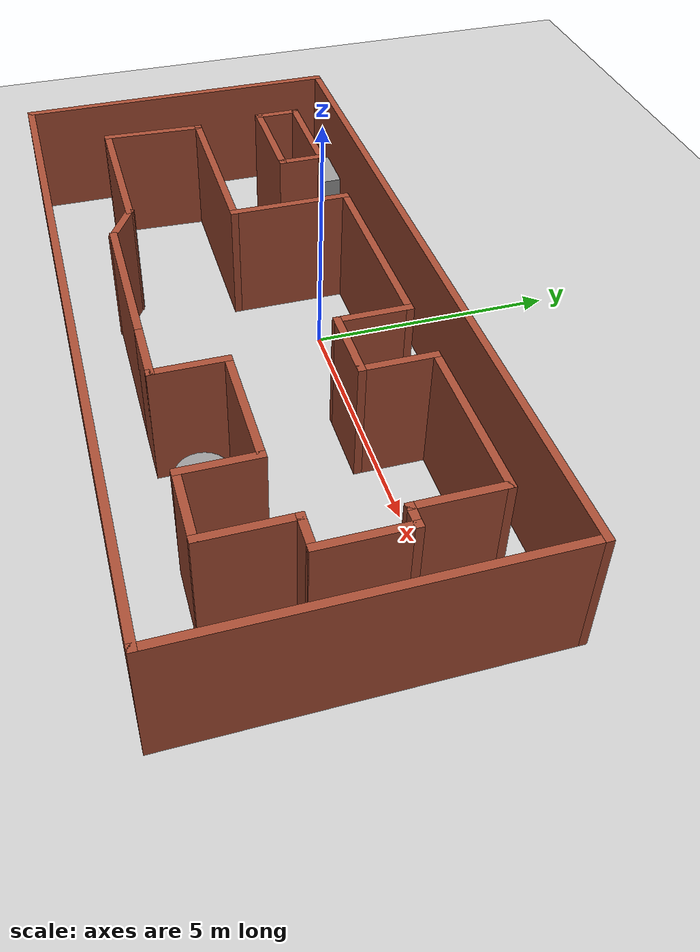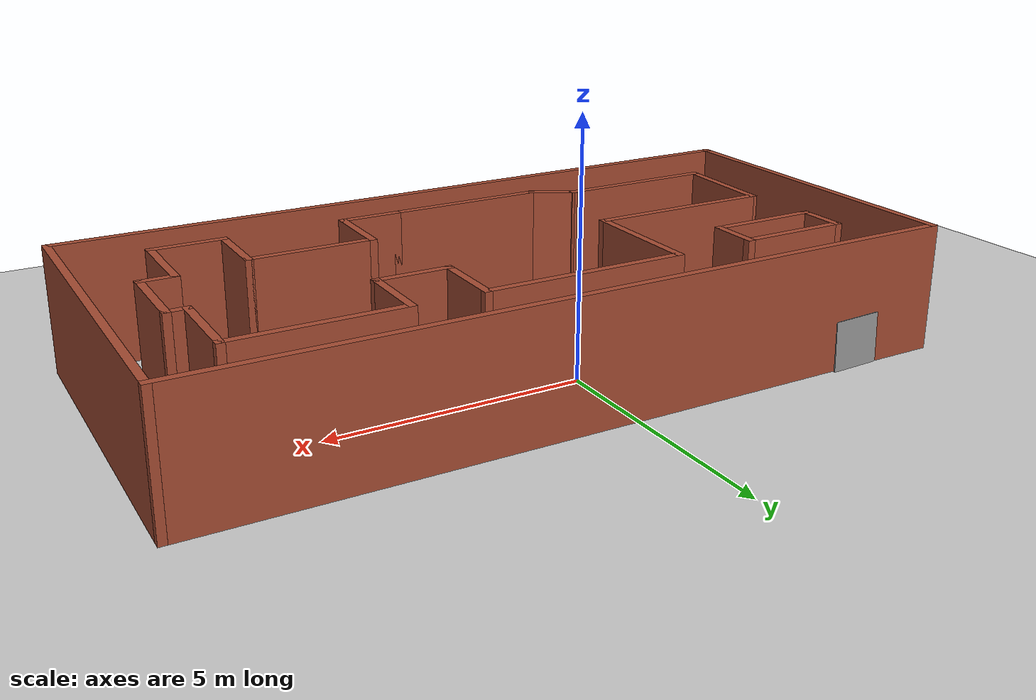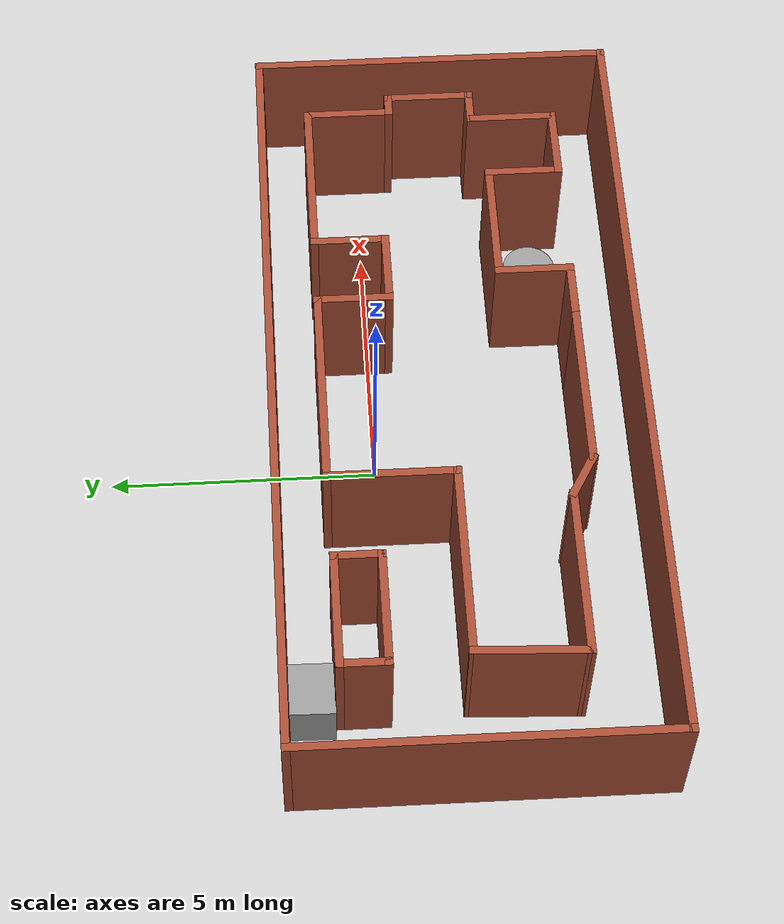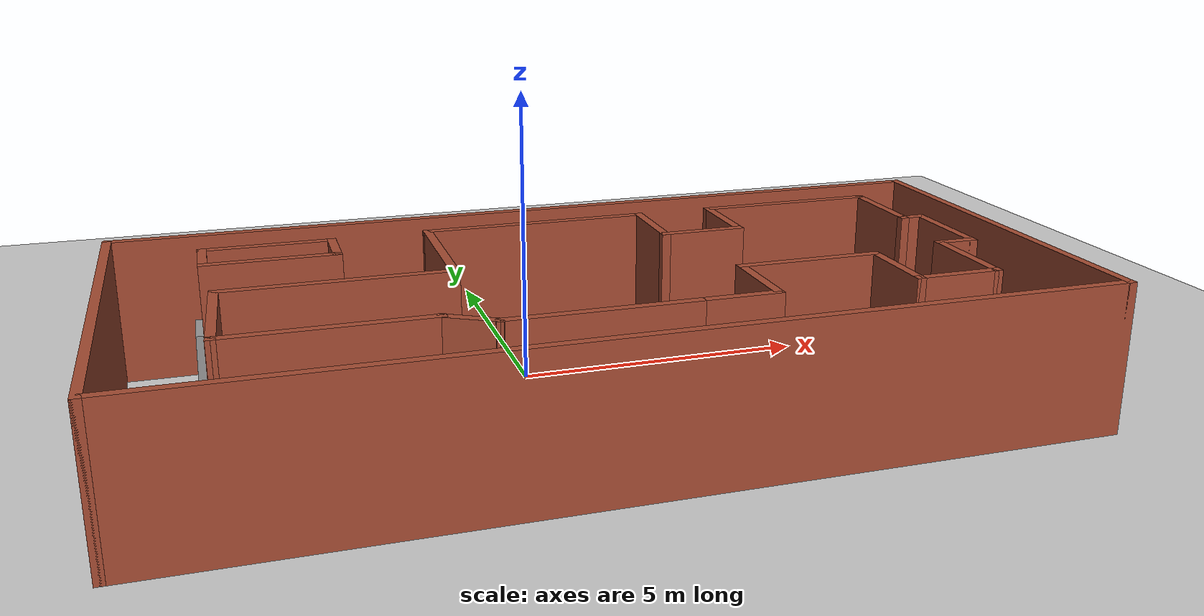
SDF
<sdf version="1.7">
 <world name="default">
  <light name="sun" type="directional">
   <pose>0 0 10 0 -0 0</pose>
   <diffuse>0.8 0.8 0.8 1</diffuse>
   <specular>0.2 0.2 0.2 1</specular>
   <attenuation>
    <range>1000</range>
    <constant>0.9</constant>
    <linear>0.01</linear>
    <quadratic>0.001</quadratic>
   </attenuation>
   <direction>-0.5 0.1 -0.9</direction>
   <spot><inner_angle>0</inner_angle><outer_angle>0</outer_angle><falloff>0</falloff></spot>
  </light>
  <model name="ground_plane">
   <static>1</static>
   <link name="link">
    <collision name="collision">
     <geometry><plane><normal>0 0 1</normal><size>100 100</size></plane></geometry>
     <surface>
      <contact><collide_bitmask>65535</collide_bitmask></contact>
      <friction><ode><mu>100</mu><mu2>50</mu2></ode></friction>
     </surface>
    </collision>
    <visual name="visual">
     <cast_shadows>0</cast_shadows>
     <geometry><plane><normal>0 0 1</normal><size>100 100</size></plane></geometry>
     <material>
      <script><uri>file://media/materials/scripts/gazebo.material</uri><name>Gazebo/Grey</name></script>
     </material>
    </visual>
   </link>
  </model>
  <gravity>0 0 -9.8</gravity>
  <magnetic_field>6e-06 2.3e-05 -4.2e-05</magnetic_field>
  <atmosphere type="adiabatic"/>
  <physics type="ode">
   <max_step_size>0.001</max_step_size>
   <real_time_factor>1</real_time_factor>
   <real_time_update_rate>1000</real_time_update_rate>
  </physics>
  <scene><ambient>0.4 0.4 0.4 1</ambient><background>0.7 0.7 0.7 1</background><shadows>1</shadows></scene>
  <spherical_coordinates>
   <surface_model>EARTH_WGS84</surface_model>
   <latitude_deg>0</latitude_deg>
   <longitude_deg>0</longitude_deg>
   <elevation>0</elevation>
   <heading_deg>0</heading_deg>
  </spherical_coordinates>
  <model name="world1-1">
   <pose>0.731843 -1.54913 0 0 -0 0</pose>
   <link name="Wall_52">
    <collision name="Wall_52_Collision">
     <geometry><box><size>7 0.15 2.5</size></box></geometry>
     <pose>0 0 1.25 0 -0 0</pose>
    </collision>
    <visual name="Wall_52_Visual">
     <pose>0 0 1.25 0 -0 0</pose>
     <geometry><box><size>7 0.15 2.5</size></box></geometry>
     <material>
      <script><uri>file://media/materials/scripts/gazebo.material</uri><name>Gazebo/Bricks</name></script>
      <ambient>1 1 1 1</ambient>
     </material>
     <meta><layer>0</layer></meta>
    </visual>
    <pose>-7.425 0 0 0 -0 -1.5708</pose>
   </link>
   <link name="Wall_53">
    <collision name="Wall_53_Collision">
     <geometry><box><size>15 0.15 2.5</size></box></geometry>
     <pose>0 0 1.25 0 -0 0</pose>
    </collision>
    <visual name="Wall_53_Visual">
     <pose>0 0 1.25 0 -0 0</pose>
     <geometry><box><size>15 0.15 2.5</size></box></geometry>
     <material>
      <script><uri>file://media/materials/scripts/gazebo.material</uri><name>Gazebo/Bricks</name></script>
      <ambient>1 1 1 1</ambient>
     </material>
     <meta><layer>0</layer></meta>
    </visual>
    <pose>-0 -3.425 0 0 -0 0</pose>
   </link>
   <link name="Wall_54">
    <collision name="Wall_54_Collision">
     <geometry><box><size>7 0.15 2.5</size></box></geometry>
     <pose>0 0 1.25 0 -0 0</pose>
    </collision>
    <visual name="Wall_54_Visual">
     <pose>0 0 1.25 0 -0 0</pose>
     <geometry><box><size>7 0.15 2.5</size></box></geometry>
     <material>
      <script><uri>file://media/materials/scripts/gazebo.material</uri><name>Gazebo/Bricks</name></script>
      <ambient>1 1 1 1</ambient>
     </material>
     <meta><layer>0</layer></meta>
    </visual>
    <pose>7.425 0 0 0 -0 1.5708</pose>
   </link>
   <link name="Wall_55">
    <collision name="Wall_55_Collision">
     <geometry><box><size>15 0.15 2.5</size></box></geometry>
     <pose>0 0 1.25 0 -0 0</pose>
    </collision>
    <visual name="Wall_55_Visual">
     <pose>0 0 1.25 0 -0 0</pose>
     <geometry><box><size>15 0.15 2.5</size></box></geometry>
     <material>
      <script><uri>file://media/materials/scripts/gazebo.material</uri><name>Gazebo/Bricks</name></script>
      <ambient>1 1 1 1</ambient>
     </material>
     <meta><layer>0</layer></meta>
    </visual>
    <pose>-0 3.425 0 0 -0 3.14159</pose>
   </link>
   <link name="Wall_57">
    <collision name="Wall_57_Collision">
     <geometry><box><size>1 0.15 2.5</size></box></geometry>
     <pose>0 0 1.25 0 -0 0</pose>
    </collision>
    <visual name="Wall_57_Visual">
     <pose>0 0 1.25 0 -0 0</pose>
     <geometry><box><size>1 0.15 2.5</size></box></geometry>
     <material>
      <script><uri>file://media/materials/scripts/gazebo.material</uri><name>Gazebo/Bricks</name></script>
      <ambient>1 1 1 1</ambient>
     </material>
     <meta><layer>0</layer></meta>
    </visual>
    <pose>-5.92151 2.02852 0 0 -0 -1.5708</pose>
   </link>
   <link name="Wall_58">
    <collision name="Wall_58_Collision">
     <geometry><box><size>2.25 0.15 2.5</size></box></geometry>
     <pose>0 0 1.25 0 -0 0</pose>
    </collision>
    <visual name="Wall_58_Visual">
     <pose>0 0 1.25 0 -0 0</pose>
     <geometry><box><size>2.25 0.15 2.5</size></box></geometry>
     <material>
      <script><uri>file://media/materials/scripts/gazebo.material</uri><name>Gazebo/Bricks</name></script>
      <ambient>1 1 1 1</ambient>
     </material>
     <meta><layer>0</layer></meta>
    </visual>
    <pose>-4.87151 1.60351 0 0 -0 0</pose>
   </link>
   <link name="Wall_59">
    <collision name="Wall_59_Collision">
     <geometry><box><size>1 0.15 2.5</size></box></geometry>
     <pose>0 0 1.25 0 -0 0</pose>
    </collision>
    <visual name="Wall_59_Visual">
     <pose>0 0 1.25 0 -0 0</pose>
     <geometry><box><size>1 0.15 2.5</size></box></geometry>
     <material>
      <script><uri>file://media/materials/scripts/gazebo.material</uri><name>Gazebo/Bricks</name></script>
      <ambient>1 1 1 1</ambient>
     </material>
     <meta><layer>0</layer></meta>
    </visual>
    <pose>-3.82151 2.02852 0 0 -0 1.5708</pose>
   </link>
   <link name="Wall_60">
    <collision name="Wall_60_Collision">
     <geometry><box><size>2.25 0.15 2.5</size></box></geometry>
     <pose>0 0 1.25 0 -0 0</pose>
    </collision>
    <visual name="Wall_60_Visual">
     <pose>0 0 1.25 0 -0 0</pose>
     <geometry><box><size>2.25 0.15 2.5</size></box></geometry>
     <material>
      <script><uri>file://media/materials/scripts/gazebo.material</uri><name>Gazebo/Bricks</name></script>
      <ambient>1 1 1 1</ambient>
     </material>
     <meta><layer>0</layer></meta>
    </visual>
    <pose>-4.87151 2.45351 0 0 -0 3.14159</pose>
   </link>
   <link name="Wall_62">
    <collision name="Wall_62_Collision">
     <geometry><box><size>3.25 0.15 2.5</size></box></geometry>
     <pose>0 0 1.25 0 -0 0</pose>
    </collision>
    <visual name="Wall_62_Visual">
     <pose>0 0 1.25 0 -0 0</pose>
     <geometry><box><size>3.25 0.15 2.5</size></box></geometry>
     <material>
      <script><uri>file://media/materials/scripts/gazebo.material</uri><name>Gazebo/Bricks</name></script>
      <ambient>1 1 1 1</ambient>
     </material>
     <meta><layer>0</layer></meta>
    </visual>
    <pose>-4.32525 -1.87191 0 0 -0 0</pose>
   </link>
   <link name="Wall_63">
    <collision name="Wall_63_Collision">
     <geometry><box><size>1 0.15 2.5</size></box></geometry>
     <pose>0 0 1.25 0 -0 0</pose>
    </collision>
    <visual name="Wall_63_Visual">
     <pose>0 0 1.25 0 -0 0</pose>
     <geometry><box><size>1 0.15 2.5</size></box></geometry>
     <material>
      <script><uri>file://media/materials/scripts/gazebo.material</uri><name>Gazebo/Bricks</name></script>
      <ambient>1 1 1 1</ambient>
     </material>
     <meta><layer>0</layer></meta>
    </visual>
    <pose>-2.40719 -2.08441 0 0 -0 -0.523599</pose>
   </link>
   <link name="Wall_64">
    <collision name="Wall_64_Collision">
     <geometry><box><size>3.25 0.15 2.5</size></box></geometry>
     <pose>0 0 1.25 0 -0 0</pose>
    </collision>
    <visual name="Wall_64_Visual">
     <pose>0 0 1.25 0 -0 0</pose>
     <geometry><box><size>3.25 0.15 2.5</size></box></geometry>
     <material>
      <script><uri>file://media/materials/scripts/gazebo.material</uri><name>Gazebo/Bricks</name></script>
      <ambient>1 1 1 1</ambient>
     </material>
     <meta><layer>0</layer></meta>
    </visual>
    <pose>-0.489128 -2.29691 0 0 -0 0</pose>
   </link>
   <link name="Wall_65">
    <collision name="Wall_65_Collision">
     <geometry><box><size>1.25 0.15 2.5</size></box></geometry>
     <pose>0 0 1.25 0 -0 0</pose>
    </collision>
    <visual name="Wall_65_Visual">
     <pose>0 0 1.25 0 -0 0</pose>
     <geometry><box><size>1.25 0.15 2.5</size></box></geometry>
     <material>
      <script><uri>file://media/materials/scripts/gazebo.material</uri><name>Gazebo/Bricks</name></script>
      <ambient>1 1 1 1</ambient>
     </material>
     <meta><layer>0</layer></meta>
    </visual>
    <pose>1.61087 -2.29691 0 0 -0 0</pose>
   </link>
   <link name="Wall_66">
    <collision name="Wall_66_Collision">
     <geometry><box><size>1.5 0.15 2.5</size></box></geometry>
     <pose>0 0 1.25 0 -0 0</pose>
    </collision>
    <visual name="Wall_66_Visual">
     <pose>0 0 1.25 0 -0 0</pose>
     <geometry><box><size>1.5 0.15 2.5</size></box></geometry>
     <material>
      <script><uri>file://media/materials/scripts/gazebo.material</uri><name>Gazebo/Bricks</name></script>
      <ambient>1 1 1 1</ambient>
     </material>
     <meta><layer>0</layer></meta>
    </visual>
    <pose>2.16087 -1.62191 0 0 -0 1.5708</pose>
   </link>
   <link name="Wall_67">
    <collision name="Wall_67_Collision">
     <geometry><box><size>2.5 0.15 2.5</size></box></geometry>
     <pose>0 0 1.25 0 -0 0</pose>
    </collision>
    <visual name="Wall_67_Visual">
     <pose>0 0 1.25 0 -0 0</pose>
     <geometry><box><size>2.5 0.15 2.5</size></box></geometry>
     <material>
      <script><uri>file://media/materials/scripts/gazebo.material</uri><name>Gazebo/Bricks</name></script>
      <ambient>1 1 1 1</ambient>
     </material>
     <meta><layer>0</layer></meta>
    </visual>
    <pose>3.33587 -0.946909 0 0 -0 0</pose>
   </link>
   <link name="Wall_68">
    <collision name="Wall_68_Collision">
     <geometry><box><size>1.5 0.15 2.5</size></box></geometry>
     <pose>0 0 1.25 0 -0 0</pose>
    </collision>
    <visual name="Wall_68_Visual">
     <pose>0 0 1.25 0 -0 0</pose>
     <geometry><box><size>1.5 0.15 2.5</size></box></geometry>
     <material>
      <script><uri>file://media/materials/scripts/gazebo.material</uri><name>Gazebo/Bricks</name></script>
      <ambient>1 1 1 1</ambient>
     </material>
     <meta><layer>0</layer></meta>
    </visual>
    <pose>4.51087 -1.62191 0 0 -0 -1.5708</pose>
   </link>
   <link name="Wall_69">
    <collision name="Wall_69_Collision">
     <geometry><box><size>1.5 0.15 2.5</size></box></geometry>
     <pose>0 0 1.25 0 -0 0</pose>
    </collision>
    <visual name="Wall_69_Visual">
     <pose>0 0 1.25 0 -0 0</pose>
     <geometry><box><size>1.5 0.15 2.5</size></box></geometry>
     <material>
      <script><uri>file://media/materials/scripts/gazebo.material</uri><name>Gazebo/Bricks</name></script>
      <ambient>1 1 1 1</ambient>
     </material>
     <meta><layer>0</layer></meta>
    </visual>
    <pose>5.18587 -2.29691 0 0 -0 0</pose>
   </link>
   <link name="Wall_70">
    <collision name="Wall_70_Collision">
     <geometry><box><size>1.75 0.15 2.5</size></box></geometry>
     <pose>0 0 1.25 0 -0 0</pose>
    </collision>
    <visual name="Wall_70_Visual">
     <pose>0 0 1.25 0 -0 0</pose>
     <geometry><box><size>1.75 0.15 2.5</size></box></geometry>
     <material>
      <script><uri>file://media/materials/scripts/gazebo.material</uri><name>Gazebo/Bricks</name></script>
      <ambient>1 1 1 1</ambient>
     </material>
     <meta><layer>0</layer></meta>
    </visual>
    <pose>5.86087 -1.49691 0 0 -0 1.5708</pose>
   </link>
   <link name="Wall_71">
    <collision name="Wall_71_Collision">
     <geometry><box><size>0.75 0.15 2.5</size></box></geometry>
     <pose>0 0 1.25 0 -0 0</pose>
    </collision>
    <visual name="Wall_71_Visual">
     <pose>0 0 1.25 0 -0 0</pose>
     <geometry><box><size>0.75 0.15 2.5</size></box></geometry>
     <material>
      <script><uri>file://media/materials/scripts/gazebo.material</uri><name>Gazebo/Bricks</name></script>
      <ambient>1 1 1 1</ambient>
     </material>
     <meta><layer>0</layer></meta>
    </visual>
    <pose>6.16087 -0.696909 0 0 -0 0</pose>
   </link>
   <link name="Wall_72">
    <collision name="Wall_72_Collision">
     <geometry><box><size>1.75 0.15 2.5</size></box></geometry>
     <pose>0 0 1.25 0 -0 0</pose>
    </collision>
    <visual name="Wall_72_Visual">
     <pose>0 0 1.25 0 -0 0</pose>
     <geometry><box><size>1.75 0.15 2.5</size></box></geometry>
     <material>
      <script><uri>file://media/materials/scripts/gazebo.material</uri><name>Gazebo/Bricks</name></script>
      <ambient>1 1 1 1</ambient>
     </material>
     <meta><layer>0</layer></meta>
    </visual>
    <pose>6.46087 0.103091 0 0 -0 1.5708</pose>
   </link>
   <link name="Wall_73">
    <collision name="Wall_73_Collision">
     <geometry><box><size>0.5 0.15 2.5</size></box></geometry>
     <pose>0 0 1.25 0 -0 0</pose>
    </collision>
    <visual name="Wall_73_Visual">
     <pose>0 0 1.25 0 -0 0</pose>
     <geometry><box><size>0.5 0.15 2.5</size></box></geometry>
     <material>
      <script><uri>file://media/materials/scripts/gazebo.material</uri><name>Gazebo/Bricks</name></script>
      <ambient>1 1 1 1</ambient>
     </material>
     <meta><layer>0</layer></meta>
    </visual>
    <pose>6.28587 0.903091 0 0 -0 3.14159</pose>
   </link>
   <link name="Wall_74">
    <collision name="Wall_74_Collision">
     <geometry><box><size>1.75 0.15 2.5</size></box></geometry>
     <pose>0 0 1.25 0 -0 0</pose>
    </collision>
    <visual name="Wall_74_Visual">
     <pose>0 0 1.25 0 -0 0</pose>
     <geometry><box><size>1.75 0.15 2.5</size></box></geometry>
     <material>
      <script><uri>file://media/materials/scripts/gazebo.material</uri><name>Gazebo/Bricks</name></script>
      <ambient>1 1 1 1</ambient>
     </material>
     <meta><layer>0</layer></meta>
    </visual>
    <pose>6.11087 1.70309 0 0 -0 1.5708</pose>
   </link>
   <link name="Wall_75">
    <collision name="Wall_75_Collision">
     <geometry><box><size>3.25 0.15 2.5</size></box></geometry>
     <pose>0 0 1.25 0 -0 0</pose>
    </collision>
    <visual name="Wall_75_Visual">
     <pose>0 0 1.25 0 -0 0</pose>
     <geometry><box><size>3.25 0.15 2.5</size></box></geometry>
     <material>
      <script><uri>file://media/materials/scripts/gazebo.material</uri><name>Gazebo/Bricks</name></script>
      <ambient>1 1 1 1</ambient>
     </material>
     <meta><layer>0</layer></meta>
    </visual>
    <pose>4.56087 2.50309 0 0 -0 3.14159</pose>
   </link>
   <link name="Wall_76">
    <collision name="Wall_76_Collision">
     <geometry><box><size>1.5 0.15 2.5</size></box></geometry>
     <pose>0 0 1.25 0 -0 0</pose>
    </collision>
    <visual name="Wall_76_Visual">
     <pose>0 0 1.25 0 -0 0</pose>
     <geometry><box><size>1.5 0.15 2.5</size></box></geometry>
     <material>
      <script><uri>file://media/materials/scripts/gazebo.material</uri><name>Gazebo/Bricks</name></script>
      <ambient>1 1 1 1</ambient>
     </material>
     <meta><layer>0</layer></meta>
    </visual>
    <pose>3.01087 1.82809 0 0 -0 -1.5708</pose>
   </link>
   <link name="Wall_77">
    <collision name="Wall_77_Collision">
     <geometry><box><size>1.5 0.15 2.5</size></box></geometry>
     <pose>0 0 1.25 0 -0 0</pose>
    </collision>
    <visual name="Wall_77_Visual">
     <pose>0 0 1.25 0 -0 0</pose>
     <geometry><box><size>1.5 0.15 2.5</size></box></geometry>
     <material>
      <script><uri>file://media/materials/scripts/gazebo.material</uri><name>Gazebo/Bricks</name></script>
      <ambient>1 1 1 1</ambient>
     </material>
     <meta><layer>0</layer></meta>
    </visual>
    <pose>2.33587 1.15309 0 0 -0 3.14159</pose>
   </link>
   <link name="Wall_78">
    <collision name="Wall_78_Collision">
     <geometry><box><size>1.5 0.15 2.5</size></box></geometry>
     <pose>0 0 1.25 0 -0 0</pose>
    </collision>
    <visual name="Wall_78_Visual">
     <pose>0 0 1.25 0 -0 0</pose>
     <geometry><box><size>1.5 0.15 2.5</size></box></geometry>
     <material>
      <script><uri>file://media/materials/scripts/gazebo.material</uri><name>Gazebo/Bricks</name></script>
      <ambient>1 1 1 1</ambient>
     </material>
     <meta><layer>0</layer></meta>
    </visual>
    <pose>1.66087 1.82809 0 0 -0 1.5708</pose>
   </link>
   <link name="Wall_79">
    <collision name="Wall_79_Collision">
     <geometry><box><size>4 0.15 2.5</size></box></geometry>
     <pose>0 0 1.25 0 -0 0</pose>
    </collision>
    <visual name="Wall_79_Visual">
     <pose>0 0 1.25 0 -0 0</pose>
     <geometry><box><size>4 0.15 2.5</size></box></geometry>
     <material>
      <script><uri>file://media/materials/scripts/gazebo.material</uri><name>Gazebo/Bricks</name></script>
      <ambient>1 1 1 1</ambient>
     </material>
     <meta><layer>0</layer></meta>
    </visual>
    <pose>-0.264128 2.50309 0 0 -0 3.14159</pose>
   </link>
   <link name="Wall_80">
    <collision name="Wall_80_Collision">
     <geometry><box><size>2.5 0.15 2.5</size></box></geometry>
     <pose>0 0 1.25 0 -0 0</pose>
    </collision>
    <visual name="Wall_80_Visual">
     <pose>0 0 1.25 0 -0 0</pose>
     <geometry><box><size>2.5 0.15 2.5</size></box></geometry>
     <material>
      <script><uri>file://media/materials/scripts/gazebo.material</uri><name>Gazebo/Bricks</name></script>
      <ambient>1 1 1 1</ambient>
     </material>
     <meta><layer>0</layer></meta>
    </visual>
    <pose>-2.18913 1.32809 0 0 -0 -1.5708</pose>
   </link>
   <link name="Wall_81">
    <collision name="Wall_81_Collision">
     <geometry><box><size>3.75 0.15 2.5</size></box></geometry>
     <pose>0 0 1.25 0 -0 0</pose>
    </collision>
    <visual name="Wall_81_Visual">
     <pose>0 0 1.25 0 -0 0</pose>
     <geometry><box><size>3.75 0.15 2.5</size></box></geometry>
     <material>
      <script><uri>file://media/materials/scripts/gazebo.material</uri><name>Gazebo/Bricks</name></script>
      <ambient>1 1 1 1</ambient>
     </material>
     <meta><layer>0</layer></meta>
    </visual>
    <pose>-3.98913 0.153091 0 0 -0 3.14159</pose>
   </link>
   <link name="Wall_82">
    <collision name="Wall_82_Collision">
     <geometry><box><size>2.17683 0.15 2.5</size></box></geometry>
     <pose>0 0 1.25 0 -0 0</pose>
    </collision>
    <visual name="Wall_82_Visual">
     <pose>0 0 1.25 0 -0 0</pose>
     <geometry><box><size>2.17683 0.15 2.5</size></box></geometry>
     <material>
      <script><uri>file://media/materials/scripts/gazebo.material</uri><name>Gazebo/Bricks</name></script>
      <ambient>1 1 1 1</ambient>
     </material>
     <meta><layer>0</layer></meta>
    </visual>
    <pose>-5.83219 -0.859409 0 0 -0 -1.6133</pose>
   </link>
   <static>1</static>
  </model>
  <model name="unit_box">
   <pose>-4.92443 1.47345 0.488623 0.014073 0.031276 -0.005298</pose>
   <link name="link">
    <inertial>
     <mass>1</mass>
     <inertia>
      <ixx>0.166667</ixx>
      <ixy>0</ixy>
      <ixz>0</ixz>
      <iyy>0.166667</iyy>
      <iyz>0</iyz>
      <izz>0.166667</izz>
     </inertia>
    </inertial>
    <collision name="collision"><geometry><box><size>1 1 1</size></box></geometry></collision>
    <visual name="visual">
     <geometry><box><size>1 1 1</size></box></geometry>
     <material>
      <script><name>Gazebo/Grey</name><uri>file://media/materials/scripts/gazebo.material</uri></script>
     </material>
    </visual>
   </link>
  </model>
  <model name="unit_cylinder">
   <pose>3.99767 -3.24125 0.499997 3e-06 4e-06 -0</pose>
   <link name="link">
    <inertial>
     <mass>1</mass>
     <inertia><ixx>0.145833</ixx><ixy>0</ixy><ixz>0</ixz><iyy>0.145833</iyy><iyz>0</iyz><izz>0.125</izz></inertia>
    </inertial>
    <collision name="collision">
     <geometry><cylinder><radius>0.5</radius><length>1</length></cylinder></geometry>
    </collision>
    <visual name="visual">
     <geometry><cylinder><radius>0.5</radius><length>1</length></cylinder></geometry>
     <material>
      <script><name>Gazebo/Grey</name><uri>file://media/materials/scripts/gazebo.material</uri></script>
     </material>
    </visual>
   </link>
  </model>
 </world>
</sdf>
